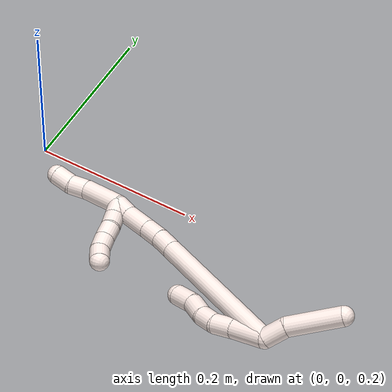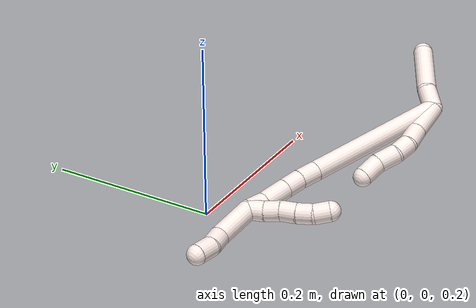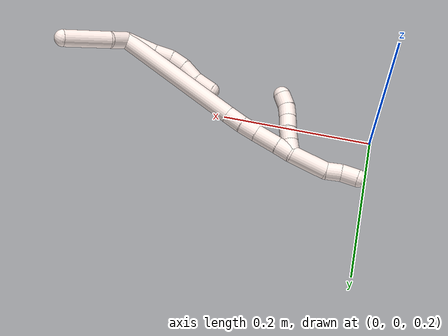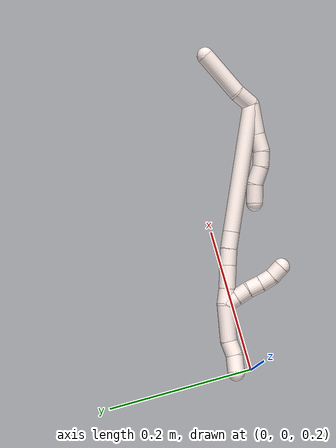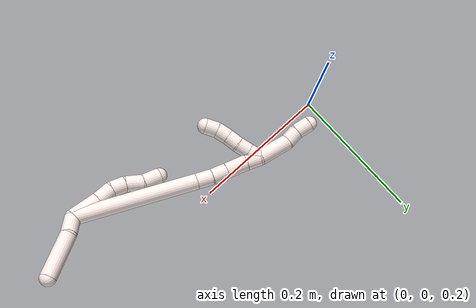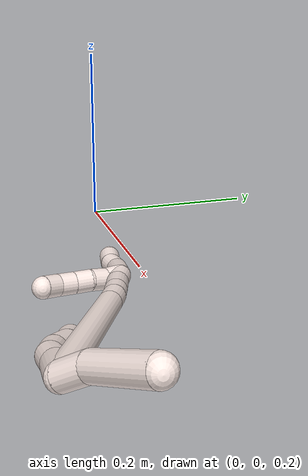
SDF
<sdf version="1.7">
 <world name="default">
  <model name="11">
   <static>0</static>
   <link name="11">
    <collision name="collision-cylinder-e_1_2_8">
     <pose>0.000419 -0.001809 -0.022558 3.06155 0.018517 0.454478</pose>
     <geometry><cylinder><radius>0.0125</radius><length>0.045268</length></cylinder></geometry>
     <surface>
      <friction><ode><mu>1.16</mu><mu2>1.16</mu2><slip1>0</slip1><slip2>0</slip2></ode></friction>
      <contact><ode><kp>1e+06</kp><kd>1</kd><max_vel>0</max_vel><min_depth>0.001</min_depth></ode></contact>
     </surface>
    </collision>
    <visual name="visual-cylinder-e_1_2_8">
     <pose>0.000419 -0.001809 -0.022558 3.06155 0.018517 0.454478</pose>
     <geometry><cylinder><radius>0.0125</radius><length>0.045268</length></cylinder></geometry>
     <material><ambient>1 0.933333 0.909804 1</ambient></material>
    </visual>
    <collision name="collision-cylinder-e_2_8_9">
     <pose>0.000116 -0.005585 -0.058181 2.99225 -0.054605 -0.700052</pose>
     <geometry><cylinder><radius>0.0125</radius><length>0.026465</length></cylinder></geometry>
     <surface>
      <friction><ode><mu>1.16</mu><mu2>1.16</mu2><slip1>0</slip1><slip2>0</slip2></ode></friction>
      <contact><ode><kp>1e+06</kp><kd>1</kd><max_vel>0</max_vel><min_depth>0.001</min_depth></ode></contact>
     </surface>
    </collision>
    <visual name="visual-cylinder-e_2_8_9">
     <pose>0.000116 -0.005585 -0.058181 2.99225 -0.054605 -0.700052</pose>
     <geometry><cylinder><radius>0.0125</radius><length>0.026465</length></cylinder></geometry>
     <material><ambient>1 0.933333 0.909804 1</ambient></material>
    </visual>
    <collision name="collision-cylinder-e_3_9_10">
     <pose>0.000117 -0.005781 -0.08242 -2.98451 0.063865 -0.771115</pose>
     <geometry><cylinder><radius>0.0125</radius><length>0.022671</length></cylinder></geometry>
     <surface>
      <friction><ode><mu>1.16</mu><mu2>1.16</mu2><slip1>0</slip1><slip2>0</slip2></ode></friction>
      <contact><ode><kp>1e+06</kp><kd>1</kd><max_vel>0</max_vel><min_depth>0.001</min_depth></ode></contact>
     </surface>
    </collision>
    <visual name="visual-cylinder-e_3_9_10">
     <pose>0.000117 -0.005781 -0.08242 -2.98451 0.063865 -0.771115</pose>
     <geometry><cylinder><radius>0.0125</radius><length>0.022671</length></cylinder></geometry>
     <material><ambient>1 0.933333 0.909804 1</ambient></material>
    </visual>
    <collision name="collision-cylinder-e_4_10_11">
     <pose>0.003244 0.001441 -0.106076 -2.7298 0.174666 -0.793931</pose>
     <geometry><cylinder><radius>0.0125</radius><length>0.027664</length></cylinder></geometry>
     <surface>
      <friction><ode><mu>1.16</mu><mu2>1.16</mu2><slip1>0</slip1><slip2>0</slip2></ode></friction>
      <contact><ode><kp>1e+06</kp><kd>1</kd><max_vel>0</max_vel><min_depth>0.001</min_depth></ode></contact>
     </surface>
    </collision>
    <visual name="visual-cylinder-e_4_10_11">
     <pose>0.003244 0.001441 -0.106076 -2.7298 0.174666 -0.793931</pose>
     <geometry><cylinder><radius>0.0125</radius><length>0.027664</length></cylinder></geometry>
     <material><ambient>1 0.933333 0.909804 1</ambient></material>
    </visual>
    <collision name="collision-cylinder-e_5_11_6">
     <pose>0.007035 0.008341 -0.13238 -3.03718 0.099459 -1.52209</pose>
     <geometry><cylinder><radius>0.0125</radius><length>0.027933</length></cylinder></geometry>
     <surface>
      <friction><ode><mu>1.16</mu><mu2>1.16</mu2><slip1>0</slip1><slip2>0</slip2></ode></friction>
      <contact><ode><kp>1e+06</kp><kd>1</kd><max_vel>0</max_vel><min_depth>0.001</min_depth></ode></contact>
     </surface>
    </collision>
    <visual name="visual-cylinder-e_5_11_6">
     <pose>0.007035 0.008341 -0.13238 -3.03718 0.099459 -1.52209</pose>
     <geometry><cylinder><radius>0.0125</radius><length>0.027933</length></cylinder></geometry>
     <material><ambient>1 0.933333 0.909804 1</ambient></material>
    </visual>
    <collision name="collision-cylinder-e_1_2_12">
     <pose>-0.001772 0.01118 0.009623 -0.860092 -0.119576 0.054898</pose>
     <geometry><cylinder><radius>0.0125</radius><length>0.029715</length></cylinder></geometry>
     <surface>
      <friction><ode><mu>1.16</mu><mu2>1.16</mu2><slip1>0</slip1><slip2>0</slip2></ode></friction>
      <contact><ode><kp>1e+06</kp><kd>1</kd><max_vel>0</max_vel><min_depth>0.001</min_depth></ode></contact>
     </surface>
    </collision>
    <visual name="visual-cylinder-e_1_2_12">
     <pose>-0.001772 0.01118 0.009623 -0.860092 -0.119576 0.054898</pose>
     <geometry><cylinder><radius>0.0125</radius><length>0.029715</length></cylinder></geometry>
     <material><ambient>1 0.933333 0.909804 1</ambient></material>
    </visual>
    <collision name="collision-cylinder-e_2_12_5">
     <pose>-0.001473 0.042741 0.047801 -0.619887 0.058999 -0.0189</pose>
     <geometry><cylinder><radius>0.0125</radius><length>0.070285</length></cylinder></geometry>
     <surface>
      <friction><ode><mu>1.16</mu><mu2>1.16</mu2><slip1>0</slip1><slip2>0</slip2></ode></friction>
      <contact><ode><kp>1e+06</kp><kd>1</kd><max_vel>0</max_vel><min_depth>0.001</min_depth></ode></contact>
     </surface>
    </collision>
    <visual name="visual-cylinder-e_2_12_5">
     <pose>-0.001473 0.042741 0.047801 -0.619887 0.058999 -0.0189</pose>
     <geometry><cylinder><radius>0.0125</radius><length>0.070285</length></cylinder></geometry>
     <material><ambient>1 0.933333 0.909804 1</ambient></material>
    </visual>
    <collision name="collision-cylinder-e_1_2_13">
     <pose>-0.000375 0.02842 -0.09217 -2.8425 -0.003886 0.02579</pose>
     <geometry><cylinder><radius>0.0125</radius><length>0.192906</length></cylinder></geometry>
     <surface>
      <friction><ode><mu>1.16</mu><mu2>1.16</mu2><slip1>0</slip1><slip2>0</slip2></ode></friction>
      <contact><ode><kp>1e+06</kp><kd>1</kd><max_vel>0</max_vel><min_depth>0.001</min_depth></ode></contact>
     </surface>
    </collision>
    <visual name="visual-cylinder-e_1_2_13">
     <pose>-0.000375 0.02842 -0.09217 -2.8425 -0.003886 0.02579</pose>
     <geometry><cylinder><radius>0.0125</radius><length>0.192906</length></cylinder></geometry>
     <material><ambient>1 0.933333 0.909804 1</ambient></material>
    </visual>
    <collision name="collision-cylinder-e_2_13_14">
     <pose>-0.001031 0.06054 -0.196374 -2.84328 -0.022382 0.14868</pose>
     <geometry><cylinder><radius>0.0125</radius><length>0.025185</length></cylinder></geometry>
     <surface>
      <friction><ode><mu>1.16</mu><mu2>1.16</mu2><slip1>0</slip1><slip2>0</slip2></ode></friction>
      <contact><ode><kp>1e+06</kp><kd>1</kd><max_vel>0</max_vel><min_depth>0.001</min_depth></ode></contact>
     </surface>
    </collision>
    <visual name="visual-cylinder-e_2_13_14">
     <pose>-0.001031 0.06054 -0.196374 -2.84328 -0.022382 0.14868</pose>
     <geometry><cylinder><radius>0.0125</radius><length>0.025185</length></cylinder></geometry>
     <material><ambient>1 0.933333 0.909804 1</ambient></material>
    </visual>
    <collision name="collision-cylinder-e_3_14_15">
     <pose>-0.001798 0.066683 -0.220237 -2.93801 -0.040116 0.387857</pose>
     <geometry><cylinder><radius>0.0125</radius><length>0.024179</length></cylinder></geometry>
     <surface>
      <friction><ode><mu>1.16</mu><mu2>1.16</mu2><slip1>0</slip1><slip2>0</slip2></ode></friction>
      <contact><ode><kp>1e+06</kp><kd>1</kd><max_vel>0</max_vel><min_depth>0.001</min_depth></ode></contact>
     </surface>
    </collision>
    <visual name="visual-cylinder-e_3_14_15">
     <pose>-0.001798 0.066683 -0.220237 -2.93801 -0.040116 0.387857</pose>
     <geometry><cylinder><radius>0.0125</radius><length>0.024179</length></cylinder></geometry>
     <material><ambient>1 0.933333 0.909804 1</ambient></material>
    </visual>
    <collision name="collision-cylinder-e_4_15_16">
     <pose>-0.003142 0.07237 -0.249082 -2.95315 -0.049533 0.512727</pose>
     <geometry><cylinder><radius>0.0125</radius><length>0.034686</length></cylinder></geometry>
     <surface>
      <friction><ode><mu>1.16</mu><mu2>1.16</mu2><slip1>0</slip1><slip2>0</slip2></ode></friction>
      <contact><ode><kp>1e+06</kp><kd>1</kd><max_vel>0</max_vel><min_depth>0.001</min_depth></ode></contact>
     </surface>
    </collision>
    <visual name="visual-cylinder-e_4_15_16">
     <pose>-0.003142 0.07237 -0.249082 -2.95315 -0.049533 0.512727</pose>
     <geometry><cylinder><radius>0.0125</radius><length>0.034686</length></cylinder></geometry>
     <material><ambient>1 0.933333 0.909804 1</ambient></material>
    </visual>
    <collision name="collision-cylinder-e_5_16_1">
     <pose>-0.005208 0.078988 -0.277048 -2.84274 -0.104961 0.671427</pose>
     <geometry><cylinder><radius>0.0125</radius><length>0.023045</length></cylinder></geometry>
     <surface>
      <friction><ode><mu>1.16</mu><mu2>1.16</mu2><slip1>0</slip1><slip2>0</slip2></ode></friction>
      <contact><ode><kp>1e+06</kp><kd>1</kd><max_vel>0</max_vel><min_depth>0.001</min_depth></ode></contact>
     </surface>
    </collision>
    <visual name="visual-cylinder-e_5_16_1">
     <pose>-0.005208 0.078988 -0.277048 -2.84274 -0.104961 0.671427</pose>
     <geometry><cylinder><radius>0.0125</radius><length>0.023045</length></cylinder></geometry>
     <material><ambient>1 0.933333 0.909804 1</ambient></material>
    </visual>
    <collision name="collision-cylinder-e_1_1_17">
     <pose>-0.008291 0.073416 -0.283944 1.14525 -0.188749 -0.121894</pose>
     <geometry><cylinder><radius>0.0125</radius><length>0.02</length></cylinder></geometry>
     <surface>
      <friction><ode><mu>1.16</mu><mu2>1.16</mu2><slip1>0</slip1><slip2>0</slip2></ode></friction>
      <contact><ode><kp>1e+06</kp><kd>1</kd><max_vel>0</max_vel><min_depth>0.001</min_depth></ode></contact>
     </surface>
    </collision>
    <visual name="visual-cylinder-e_1_1_17">
     <pose>-0.008291 0.073416 -0.283944 1.14525 -0.188749 -0.121894</pose>
     <geometry><cylinder><radius>0.0125</radius><length>0.02</length></cylinder></geometry>
     <material><ambient>1 0.933333 0.909804 1</ambient></material>
    </visual>
    <collision name="collision-cylinder-e_2_17_18">
     <pose>-0.013367 0.056162 -0.275335 1.06936 -0.325741 -0.194022</pose>
     <geometry><cylinder><radius>0.0125</radius><length>0.02</length></cylinder></geometry>
     <surface>
      <friction><ode><mu>1.16</mu><mu2>1.16</mu2><slip1>0</slip1><slip2>0</slip2></ode></friction>
      <contact><ode><kp>1e+06</kp><kd>1</kd><max_vel>0</max_vel><min_depth>0.001</min_depth></ode></contact>
     </surface>
    </collision>
    <visual name="visual-cylinder-e_2_17_18">
     <pose>-0.013367 0.056162 -0.275335 1.06936 -0.325741 -0.194022</pose>
     <geometry><cylinder><radius>0.0125</radius><length>0.02</length></cylinder></geometry>
     <material><ambient>1 0.933333 0.909804 1</ambient></material>
    </visual>
    <collision name="collision-cylinder-e_3_18_19">
     <pose>-0.019023 0.038685 -0.267633 1.24009 -0.248053 -0.177551</pose>
     <geometry><cylinder><radius>0.0125</radius><length>0.02</length></cylinder></geometry>
     <surface>
      <friction><ode><mu>1.16</mu><mu2>1.16</mu2><slip1>0</slip1><slip2>0</slip2></ode></friction>
      <contact><ode><kp>1e+06</kp><kd>1</kd><max_vel>0</max_vel><min_depth>0.001</min_depth></ode></contact>
     </surface>
    </collision>
    <visual name="visual-cylinder-e_3_18_19">
     <pose>-0.019023 0.038685 -0.267633 1.24009 -0.248053 -0.177551</pose>
     <geometry><cylinder><radius>0.0125</radius><length>0.02</length></cylinder></geometry>
     <material><ambient>1 0.933333 0.909804 1</ambient></material>
    </visual>
    <collision name="collision-cylinder-e_4_19_20">
     <pose>-0.024169 0.020779 -0.260435 1.13668 -0.272518 -0.174679</pose>
     <geometry><cylinder><radius>0.0125</radius><length>0.02</length></cylinder></geometry>
     <surface>
      <friction><ode><mu>1.16</mu><mu2>1.16</mu2><slip1>0</slip1><slip2>0</slip2></ode></friction>
      <contact><ode><kp>1e+06</kp><kd>1</kd><max_vel>0</max_vel><min_depth>0.001</min_depth></ode></contact>
     </surface>
    </collision>
    <visual name="visual-cylinder-e_4_19_20">
     <pose>-0.024169 0.020779 -0.260435 1.13668 -0.272518 -0.174679</pose>
     <geometry><cylinder><radius>0.0125</radius><length>0.02</length></cylinder></geometry>
     <material><ambient>1 0.933333 0.909804 1</ambient></material>
    </visual>
    <collision name="collision-cylinder-e_5_20_4">
     <pose>-0.029422 0.004904 -0.249865 0.830603 -0.259008 -0.114726</pose>
     <geometry><cylinder><radius>0.0125</radius><length>0.02</length></cylinder></geometry>
     <surface>
      <friction><ode><mu>1.16</mu><mu2>1.16</mu2><slip1>0</slip1><slip2>0</slip2></ode></friction>
      <contact><ode><kp>1e+06</kp><kd>1</kd><max_vel>0</max_vel><min_depth>0.001</min_depth></ode></contact>
     </surface>
    </collision>
    <visual name="visual-cylinder-e_5_20_4">
     <pose>-0.029422 0.004904 -0.249865 0.830603 -0.259008 -0.114726</pose>
     <geometry><cylinder><radius>0.0125</radius><length>0.02</length></cylinder></geometry>
     <material><ambient>1 0.933333 0.909804 1</ambient></material>
    </visual>
    <collision name="collision-cylinder-e_1_1_21">
     <pose>-0.00711 0.083461 -0.31477 -3.10055 -0.025929 1.12687</pose>
     <geometry><cylinder><radius>0.0125</radius><length>0.053604</length></cylinder></geometry>
     <surface>
      <friction><ode><mu>1.16</mu><mu2>1.16</mu2><slip1>0</slip1><slip2>0</slip2></ode></friction>
      <contact><ode><kp>1e+06</kp><kd>1</kd><max_vel>0</max_vel><min_depth>0.001</min_depth></ode></contact>
     </surface>
    </collision>
    <visual name="visual-cylinder-e_1_1_21">
     <pose>-0.00711 0.083461 -0.31477 -3.10055 -0.025929 1.12687</pose>
     <geometry><cylinder><radius>0.0125</radius><length>0.053604</length></cylinder></geometry>
     <material><ambient>1 0.933333 0.909804 1</ambient></material>
    </visual>
    <collision name="collision-cylinder-e_2_21_22">
     <pose>-0.010867 0.08274 -0.352118 2.97112 -0.277943 -2.04486</pose>
     <geometry><cylinder><radius>0.0125</radius><length>0.022323</length></cylinder></geometry>
     <surface>
      <friction><ode><mu>1.16</mu><mu2>1.16</mu2><slip1>0</slip1><slip2>0</slip2></ode></friction>
      <contact><ode><kp>1e+06</kp><kd>1</kd><max_vel>0</max_vel><min_depth>0.001</min_depth></ode></contact>
     </surface>
    </collision>
    <visual name="visual-cylinder-e_2_21_22">
     <pose>-0.010867 0.08274 -0.352118 2.97112 -0.277943 -2.04486</pose>
     <geometry><cylinder><radius>0.0125</radius><length>0.022323</length></cylinder></geometry>
     <material><ambient>1 0.933333 0.909804 1</ambient></material>
    </visual>
    <collision name="collision-cylinder-e_3_22_3">
     <pose>-0.017042 0.082343 -0.374235 -3.01881 -0.261599 2.26735</pose>
     <geometry><cylinder><radius>0.0125</radius><length>0.024072</length></cylinder></geometry>
     <surface>
      <friction><ode><mu>1.16</mu><mu2>1.16</mu2><slip1>0</slip1><slip2>0</slip2></ode></friction>
      <contact><ode><kp>1e+06</kp><kd>1</kd><max_vel>0</max_vel><min_depth>0.001</min_depth></ode></contact>
     </surface>
    </collision>
    <visual name="visual-cylinder-e_3_22_3">
     <pose>-0.017042 0.082343 -0.374235 -3.01881 -0.261599 2.26735</pose>
     <geometry><cylinder><radius>0.0125</radius><length>0.024072</length></cylinder></geometry>
     <material><ambient>1 0.933333 0.909804 1</ambient></material>
    </visual>
    <collision name="collision-sphere-3">
     <pose>-0.020155 0.083767 -0.385774 0 -0 0</pose>
     <geometry><sphere><radius>0.0125</radius></sphere></geometry>
     <surface>
      <friction><ode><mu>1.16</mu><mu2>1.16</mu2><slip1>0</slip1><slip2>0</slip2></ode></friction>
      <contact><ode><kp>1e+06</kp><kd>1</kd><max_vel>0</max_vel><min_depth>0.001</min_depth></ode></contact>
     </surface>
    </collision>
    <visual name="visual-sphere-3">
     <pose>-0.020155 0.083767 -0.385774 0 -0 0</pose>
     <geometry><sphere><radius>0.0125</radius></sphere></geometry>
     <material><ambient>1 0.933333 0.909804 1</ambient></material>
    </visual>
    <collision name="collision-sphere-22">
     <pose>-0.013929 0.080919 -0.362696 0 -0 0</pose>
     <geometry><sphere><radius>0.0125</radius></sphere></geometry>
     <surface>
      <friction><ode><mu>1.16</mu><mu2>1.16</mu2><slip1>0</slip1><slip2>0</slip2></ode></friction>
      <contact><ode><kp>1e+06</kp><kd>1</kd><max_vel>0</max_vel><min_depth>0.001</min_depth></ode></contact>
     </surface>
    </collision>
    <visual name="visual-sphere-22">
     <pose>-0.013929 0.080919 -0.362696 0 -0 0</pose>
     <geometry><sphere><radius>0.0125</radius></sphere></geometry>
     <material><ambient>1 0.933333 0.909804 1</ambient></material>
    </visual>
    <collision name="collision-sphere-21">
     <pose>-0.007804 0.084561 -0.34154 0 -0 0</pose>
     <geometry><sphere><radius>0.0125</radius></sphere></geometry>
     <surface>
      <friction><ode><mu>1.16</mu><mu2>1.16</mu2><slip1>0</slip1><slip2>0</slip2></ode></friction>
      <contact><ode><kp>1e+06</kp><kd>1</kd><max_vel>0</max_vel><min_depth>0.001</min_depth></ode></contact>
     </surface>
    </collision>
    <visual name="visual-sphere-21">
     <pose>-0.007804 0.084561 -0.34154 0 -0 0</pose>
     <geometry><sphere><radius>0.0125</radius></sphere></geometry>
     <material><ambient>1 0.933333 0.909804 1</ambient></material>
    </visual>
    <collision name="collision-sphere-4">
     <pose>-0.031983 -0.002233 -0.243345 0 -0 0</pose>
     <geometry><sphere><radius>0.0125</radius></sphere></geometry>
     <surface>
      <friction><ode><mu>1.16</mu><mu2>1.16</mu2><slip1>0</slip1><slip2>0</slip2></ode></friction>
      <contact><ode><kp>1e+06</kp><kd>1</kd><max_vel>0</max_vel><min_depth>0.001</min_depth></ode></contact>
     </surface>
    </collision>
    <visual name="visual-sphere-4">
     <pose>-0.031983 -0.002233 -0.243345 0 -0 0</pose>
     <geometry><sphere><radius>0.0125</radius></sphere></geometry>
     <material><ambient>1 0.933333 0.909804 1</ambient></material>
    </visual>
    <collision name="collision-sphere-20">
     <pose>-0.026861 0.012041 -0.256384 0 -0 0</pose>
     <geometry><sphere><radius>0.0125</radius></sphere></geometry>
     <surface>
      <friction><ode><mu>1.16</mu><mu2>1.16</mu2><slip1>0</slip1><slip2>0</slip2></ode></friction>
      <contact><ode><kp>1e+06</kp><kd>1</kd><max_vel>0</max_vel><min_depth>0.001</min_depth></ode></contact>
     </surface>
    </collision>
    <visual name="visual-sphere-20">
     <pose>-0.026861 0.012041 -0.256384 0 -0 0</pose>
     <geometry><sphere><radius>0.0125</radius></sphere></geometry>
     <material><ambient>1 0.933333 0.909804 1</ambient></material>
    </visual>
    <collision name="collision-sphere-6">
     <pose>0.008422 0.00979 -0.146201 0 -0 0</pose>
     <geometry><sphere><radius>0.0125</radius></sphere></geometry>
     <surface>
      <friction><ode><mu>1.16</mu><mu2>1.16</mu2><slip1>0</slip1><slip2>0</slip2></ode></friction>
      <contact><ode><kp>1e+06</kp><kd>1</kd><max_vel>0</max_vel><min_depth>0.001</min_depth></ode></contact>
     </surface>
    </collision>
    <visual name="visual-sphere-6">
     <pose>0.008422 0.00979 -0.146201 0 -0 0</pose>
     <geometry><sphere><radius>0.0125</radius></sphere></geometry>
     <material><ambient>1 0.933333 0.909804 1</ambient></material>
    </visual>
    <collision name="collision-sphere-11">
     <pose>0.005648 0.006893 -0.118558 0 -0 0</pose>
     <geometry><sphere><radius>0.0125</radius></sphere></geometry>
     <surface>
      <friction><ode><mu>1.16</mu><mu2>1.16</mu2><slip1>0</slip1><slip2>0</slip2></ode></friction>
      <contact><ode><kp>1e+06</kp><kd>1</kd><max_vel>0</max_vel><min_depth>0.001</min_depth></ode></contact>
     </surface>
    </collision>
    <visual name="visual-sphere-11">
     <pose>0.005648 0.006893 -0.118558 0 -0 0</pose>
     <geometry><sphere><radius>0.0125</radius></sphere></geometry>
     <material><ambient>1 0.933333 0.909804 1</ambient></material>
    </visual>
    <collision name="collision-sphere-10">
     <pose>0.000841 -0.004011 -0.093593 0 -0 0</pose>
     <geometry><sphere><radius>0.0125</radius></sphere></geometry>
     <surface>
      <friction><ode><mu>1.16</mu><mu2>1.16</mu2><slip1>0</slip1><slip2>0</slip2></ode></friction>
      <contact><ode><kp>1e+06</kp><kd>1</kd><max_vel>0</max_vel><min_depth>0.001</min_depth></ode></contact>
     </surface>
    </collision>
    <visual name="visual-sphere-10">
     <pose>0.000841 -0.004011 -0.093593 0 -0 0</pose>
     <geometry><sphere><radius>0.0125</radius></sphere></geometry>
     <material><ambient>1 0.933333 0.909804 1</ambient></material>
    </visual>
    <collision name="collision-sphere-9">
     <pose>-0.000606 -0.00755 -0.071247 0 -0 0</pose>
     <geometry><sphere><radius>0.0125</radius></sphere></geometry>
     <surface>
      <friction><ode><mu>1.16</mu><mu2>1.16</mu2><slip1>0</slip1><slip2>0</slip2></ode></friction>
      <contact><ode><kp>1e+06</kp><kd>1</kd><max_vel>0</max_vel><min_depth>0.001</min_depth></ode></contact>
     </surface>
    </collision>
    <visual name="visual-sphere-9">
     <pose>-0.000606 -0.00755 -0.071247 0 -0 0</pose>
     <geometry><sphere><radius>0.0125</radius></sphere></geometry>
     <material><ambient>1 0.933333 0.909804 1</ambient></material>
    </visual>
    <collision name="collision-sphere-2">
     <geometry><sphere><radius>0.0125</radius></sphere></geometry>
     <surface>
      <friction><ode><mu>1.16</mu><mu2>1.16</mu2><slip1>0</slip1><slip2>0</slip2></ode></friction>
      <contact><ode><kp>1e+06</kp><kd>1</kd><max_vel>0</max_vel><min_depth>0.001</min_depth></ode></contact>
     </surface>
    </collision>
    <visual name="visual-sphere-2">
     <geometry><sphere><radius>0.0125</radius></sphere></geometry>
     <material><ambient>1 0.933333 0.909804 1</ambient></material>
    </visual>
    <collision name="collision-sphere-19">
     <pose>-0.021478 0.029516 -0.264486 0 -0 0</pose>
     <geometry><sphere><radius>0.0125</radius></sphere></geometry>
     <surface>
      <friction><ode><mu>1.16</mu><mu2>1.16</mu2><slip1>0</slip1><slip2>0</slip2></ode></friction>
      <contact><ode><kp>1e+06</kp><kd>1</kd><max_vel>0</max_vel><min_depth>0.001</min_depth></ode></contact>
     </surface>
    </collision>
    <visual name="visual-sphere-19">
     <pose>-0.021478 0.029516 -0.264486 0 -0 0</pose>
     <geometry><sphere><radius>0.0125</radius></sphere></geometry>
     <material><ambient>1 0.933333 0.909804 1</ambient></material>
    </visual>
    <collision name="collision-sphere-8">
     <pose>0.000838 -0.003619 -0.045115 0 -0 0</pose>
     <geometry><sphere><radius>0.0125</radius></sphere></geometry>
     <surface>
      <friction><ode><mu>1.16</mu><mu2>1.16</mu2><slip1>0</slip1><slip2>0</slip2></ode></friction>
      <contact><ode><kp>1e+06</kp><kd>1</kd><max_vel>0</max_vel><min_depth>0.001</min_depth></ode></contact>
     </surface>
    </collision>
    <visual name="visual-sphere-8">
     <pose>0.000838 -0.003619 -0.045115 0 -0 0</pose>
     <geometry><sphere><radius>0.0125</radius></sphere></geometry>
     <material><ambient>1 0.933333 0.909804 1</ambient></material>
    </visual>
    <collision name="collision-sphere-12">
     <pose>-0.003545 0.022361 0.019247 0 -0 0</pose>
     <geometry><sphere><radius>0.0125</radius></sphere></geometry>
     <surface>
      <friction><ode><mu>1.16</mu><mu2>1.16</mu2><slip1>0</slip1><slip2>0</slip2></ode></friction>
      <contact><ode><kp>1e+06</kp><kd>1</kd><max_vel>0</max_vel><min_depth>0.001</min_depth></ode></contact>
     </surface>
    </collision>
    <visual name="visual-sphere-12">
     <pose>-0.003545 0.022361 0.019247 0 -0 0</pose>
     <geometry><sphere><radius>0.0125</radius></sphere></geometry>
     <material><ambient>1 0.933333 0.909804 1</ambient></material>
    </visual>
    <collision name="collision-sphere-5">
     <pose>0.0006 0.063121 0.076355 0 -0 0</pose>
     <geometry><sphere><radius>0.0125</radius></sphere></geometry>
     <surface>
      <friction><ode><mu>1.16</mu><mu2>1.16</mu2><slip1>0</slip1><slip2>0</slip2></ode></friction>
      <contact><ode><kp>1e+06</kp><kd>1</kd><max_vel>0</max_vel><min_depth>0.001</min_depth></ode></contact>
     </surface>
    </collision>
    <visual name="visual-sphere-5">
     <pose>0.0006 0.063121 0.076355 0 -0 0</pose>
     <geometry><sphere><radius>0.0125</radius></sphere></geometry>
     <material><ambient>1 0.933333 0.909804 1</ambient></material>
    </visual>
    <collision name="collision-sphere-13">
     <pose>-0.00075 0.05684 -0.18434 0 -0 0</pose>
     <geometry><sphere><radius>0.0125</radius></sphere></geometry>
     <surface>
      <friction><ode><mu>1.16</mu><mu2>1.16</mu2><slip1>0</slip1><slip2>0</slip2></ode></friction>
      <contact><ode><kp>1e+06</kp><kd>1</kd><max_vel>0</max_vel><min_depth>0.001</min_depth></ode></contact>
     </surface>
    </collision>
    <visual name="visual-sphere-13">
     <pose>-0.00075 0.05684 -0.18434 0 -0 0</pose>
     <geometry><sphere><radius>0.0125</radius></sphere></geometry>
     <material><ambient>1 0.933333 0.909804 1</ambient></material>
    </visual>
    <collision name="collision-sphere-14">
     <pose>-0.001313 0.06424 -0.208407 0 -0 0</pose>
     <geometry><sphere><radius>0.0125</radius></sphere></geometry>
     <surface>
      <friction><ode><mu>1.16</mu><mu2>1.16</mu2><slip1>0</slip1><slip2>0</slip2></ode></friction>
      <contact><ode><kp>1e+06</kp><kd>1</kd><max_vel>0</max_vel><min_depth>0.001</min_depth></ode></contact>
     </surface>
    </collision>
    <visual name="visual-sphere-14">
     <pose>-0.001313 0.06424 -0.208407 0 -0 0</pose>
     <geometry><sphere><radius>0.0125</radius></sphere></geometry>
     <material><ambient>1 0.933333 0.909804 1</ambient></material>
    </visual>
    <collision name="collision-sphere-15">
     <pose>-0.002283 0.069125 -0.232067 0 -0 0</pose>
     <geometry><sphere><radius>0.0125</radius></sphere></geometry>
     <surface>
      <friction><ode><mu>1.16</mu><mu2>1.16</mu2><slip1>0</slip1><slip2>0</slip2></ode></friction>
      <contact><ode><kp>1e+06</kp><kd>1</kd><max_vel>0</max_vel><min_depth>0.001</min_depth></ode></contact>
     </surface>
    </collision>
    <visual name="visual-sphere-15">
     <pose>-0.002283 0.069125 -0.232067 0 -0 0</pose>
     <geometry><sphere><radius>0.0125</radius></sphere></geometry>
     <material><ambient>1 0.933333 0.909804 1</ambient></material>
    </visual>
    <collision name="collision-sphere-16">
     <pose>-0.004 0.075615 -0.266097 0 -0 0</pose>
     <geometry><sphere><radius>0.0125</radius></sphere></geometry>
     <surface>
      <friction><ode><mu>1.16</mu><mu2>1.16</mu2><slip1>0</slip1><slip2>0</slip2></ode></friction>
      <contact><ode><kp>1e+06</kp><kd>1</kd><max_vel>0</max_vel><min_depth>0.001</min_depth></ode></contact>
     </surface>
    </collision>
    <visual name="visual-sphere-16">
     <pose>-0.004 0.075615 -0.266097 0 -0 0</pose>
     <geometry><sphere><radius>0.0125</radius></sphere></geometry>
     <material><ambient>1 0.933333 0.909804 1</ambient></material>
    </visual>
    <collision name="collision-sphere-1">
     <pose>-0.006415 0.082362 -0.287999 0 -0 0</pose>
     <geometry><sphere><radius>0.0125</radius></sphere></geometry>
     <surface>
      <friction><ode><mu>1.16</mu><mu2>1.16</mu2><slip1>0</slip1><slip2>0</slip2></ode></friction>
      <contact><ode><kp>1e+06</kp><kd>1</kd><max_vel>0</max_vel><min_depth>0.001</min_depth></ode></contact>
     </surface>
    </collision>
    <visual name="visual-sphere-1">
     <pose>-0.006415 0.082362 -0.287999 0 -0 0</pose>
     <geometry><sphere><radius>0.0125</radius></sphere></geometry>
     <material><ambient>1 0.933333 0.909804 1</ambient></material>
    </visual>
    <collision name="collision-sphere-18">
     <pose>-0.016568 0.047854 -0.270781 0 -0 0</pose>
     <geometry><sphere><radius>0.0125</radius></sphere></geometry>
     <surface>
      <friction><ode><mu>1.16</mu><mu2>1.16</mu2><slip1>0</slip1><slip2>0</slip2></ode></friction>
      <contact><ode><kp>1e+06</kp><kd>1</kd><max_vel>0</max_vel><min_depth>0.001</min_depth></ode></contact>
     </surface>
    </collision>
    <visual name="visual-sphere-18">
     <pose>-0.016568 0.047854 -0.270781 0 -0 0</pose>
     <geometry><sphere><radius>0.0125</radius></sphere></geometry>
     <material><ambient>1 0.933333 0.909804 1</ambient></material>
    </visual>
    <collision name="collision-sphere-17">
     <pose>-0.010167 0.064469 -0.279889 0 -0 0</pose>
     <geometry><sphere><radius>0.0125</radius></sphere></geometry>
     <surface>
      <friction><ode><mu>1.16</mu><mu2>1.16</mu2><slip1>0</slip1><slip2>0</slip2></ode></friction>
      <contact><ode><kp>1e+06</kp><kd>1</kd><max_vel>0</max_vel><min_depth>0.001</min_depth></ode></contact>
     </surface>
    </collision>
    <visual name="visual-sphere-17">
     <pose>-0.010167 0.064469 -0.279889 0 -0 0</pose>
     <geometry><sphere><radius>0.0125</radius></sphere></geometry>
     <material><ambient>1 0.933333 0.909804 1</ambient></material>
    </visual>
    <inertial>
     <pose>-0.00418 0.03784 -0.14797 0 -0 0</pose>
     <mass>0.75</mass>
     <inertia>
      <ixx>0.000701</ixx>
      <ixy>0</ixy>
      <ixz>0</ixz>
      <iyy>-0.00054</iyy>
      <iyz>0</iyz>
      <izz>-0.000225</izz>
     </inertia>
    </inertial>
   </link>
   <pose>0.374143 -0.110233 0.196452 0.850575 1.16459 0.751445</pose>
  </model>
 </world>
</sdf>
